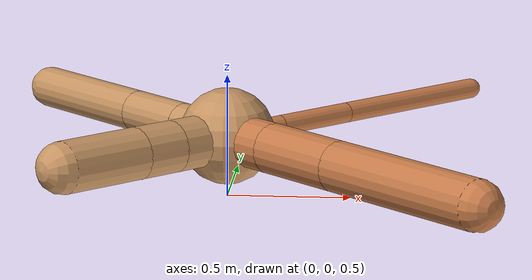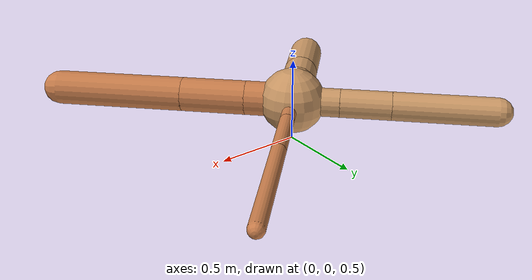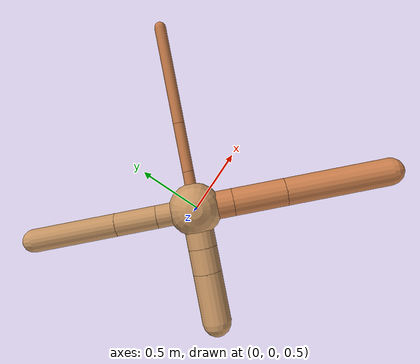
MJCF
<?xml version="1.0" ?>
<mujoco model="ant">

	<compiler angle="degree" coordinate="local" inertiafromgeom="true"/>

	<option integrator="RK4" timestep="0.01"/>

	<custom>

		<numeric data="0.0 0.0 0.55 1.0 0.0 0.0 0.0 0.0 1.0 0.0 -1.0 0.0 -1.0 0.0 1.0" name="init_qpos"/>

	</custom>

	<default>

		<joint armature="1" damping="1" limited="true"/>

		<geom conaffinity="0" condim="3" density="5.0" friction="1.5 0.1 0.1" margin="0.01" rgba="0.8 0.6 0.4 1"/>

	</default>

	<worldbody>

		<body name="torso" pos="0 0 0.75">

			<geom name="torso_geom" pos="0 0 0" size="0.19591070791554804" type="sphere"/>

			<!--joint armature="0" damping="0" limited="false" margin="0.01" name="root" pos="0 0 0" type="free"/-->

			<body name="front_left_leg" pos="0 0 0">

				<geom fromto="0 0 0 0.2 0.2 0" name="aux_1_geom" size="0.04184475147560816" type="capsule" rgba=".8 .5 .3 1"/>

				<body name="aux_1" pos="0.2 0.2 0">

					<joint axis="0 0 1" name="hip_1" pos="0.0 0.0 0.0" range="-40 40" type="hinge"/>

					<geom fromto="0 0 0 0.2543260058563163 0.2543260058563163 0" name="left_leg_geom" size="0.04184475147560816" type="capsule" rgba=".8 .5 .3 1"/>

					<body pos="0.2543260058563163 0.2543260058563163 0" name="front_left_foot">

						<joint axis="-1 1 0" name="ankle_1" pos="0.0 0.0 0.0" range="30 100" type="hinge"/>

						<geom fromto="0 0 0 0.5086520117126326 0.5086520117126326 0" name="left_ankle_geom" size="0.04184475147560816" type="capsule" rgba=".8 .5 .3 1"/>

					</body>

				</body>

			</body>

			<body name="front_right_leg" pos="0 0 0">

				<geom fromto="0 0 0 -0.2 0.2 0" name="aux_2_geom" size="0.08520082024201989" type="capsule"/>

				<body name="aux_2" pos="-0.2 0.2 0">

					<joint axis="0 0 1" name="hip_2" pos="0.0 0.0 0.0" range="-40 40" type="hinge"/>

					<geom fromto="0 0 0 -0.2143359155226246 0.2143359155226246 0" name="right_leg_geom" size="0.08520082024201989" type="capsule"/>

					<body pos="-0.2143359155226246 0.2143359155226246 0" name="front_right_foot">

						<joint axis="1 1 0" name="ankle_2" pos="0.0 0.0 0.0" range="-100 -30" type="hinge"/>

						<geom fromto="0 0 0 -0.4286718310452492 0.4286718310452492 0" name="right_ankle_geom" size="0.08520082024201989" type="capsule"/>

					</body>

				</body>

			</body>

			<body name="left_back_leg" pos="0 0 0">

				<geom fromto="0 0 0 -0.2 -0.2 0" name="aux_3_geom" size="0.10626476057299042" type="capsule"/>

				<body name="aux_3" pos="-0.2 -0.2 0">

					<joint axis="0 0 1" name="hip_3" pos="0.0 0.0 0.0" range="-40 40" type="hinge"/>

					<geom fromto="0 0 0 -0.12950112125722227 -0.12950112125722227 0" name="back_leg_geom" size="0.10626476057299042" type="capsule"/>

					<body pos="-0.12950112125722227 -0.12950112125722227 0" name="left_back_foot">

						<joint axis="-1 1 0" name="ankle_3" pos="0.0 0.0 0.0" range="-100 -30" type="hinge"/>

						<geom fromto="0 0 0 -0.25900224251444454 -0.25900224251444454 0" name="third_ankle_geom" size="0.10626476057299042" type="capsule"/>

					</body>

				</body>

			</body>

			<body name="right_back_leg" pos="0 0 0">

				<geom fromto="0 0 0 0.2 -0.2 0" name="aux_4_geom" size="0.10251604400545987" type="capsule" rgba=".8 .5 .3 1"/>

				<body name="aux_4" pos="0.2 -0.2 0">

					<joint axis="0 0 1" name="hip_4" pos="0.0 0.0 0.0" range="-40 40" type="hinge"/>

					<geom fromto="0 0 0 0.2755449777474379 -0.2755449777474379 0" name="rightback_leg_geom" size="0.10251604400545987" type="capsule" rgba=".8 .5 .3 1"/>

					<body pos="0.2755449777474379 -0.2755449777474379 0" name="right_back_foot">

						<joint axis="1 1 0" name="ankle_4" pos="0.0 0.0 0.0" range="30 100" type="hinge"/>

						<geom fromto="0 0 0 0.5510899554948758 -0.5510899554948758 0" name="fourth_ankle_geom" size="0.10251604400545987" type="capsule" rgba=".8 .5 .3 1"/>

					</body>

				</body>

			</body>

		</body>

	</worldbody>

	<actuator>

		<motor ctrllimited="true" ctrlrange="-1.0 1.0" joint="hip_4" gear="150"/>

		<motor ctrllimited="true" ctrlrange="-1.0 1.0" joint="ankle_4" gear="150"/>

		<motor ctrllimited="true" ctrlrange="-1.0 1.0" joint="hip_1" gear="150"/>

		<motor ctrllimited="true" ctrlrange="-1.0 1.0" joint="ankle_1" gear="150"/>

		<motor ctrllimited="true" ctrlrange="-1.0 1.0" joint="hip_2" gear="150"/>

		<motor ctrllimited="true" ctrlrange="-1.0 1.0" joint="ankle_2" gear="150"/>

		<motor ctrllimited="true" ctrlrange="-1.0 1.0" joint="hip_3" gear="150"/>

		<motor ctrllimited="true" ctrlrange="-1.0 1.0" joint="ankle_3" gear="150"/>

	</actuator>

</mujoco>
